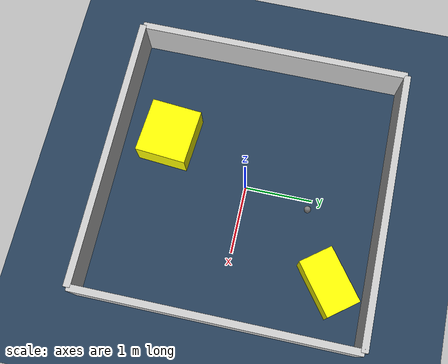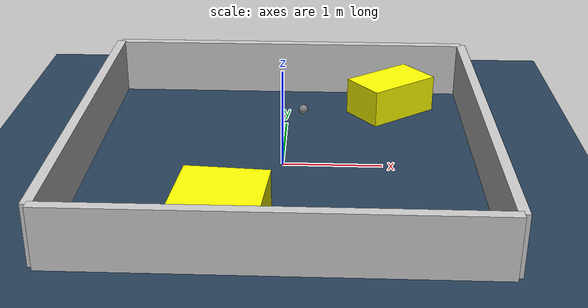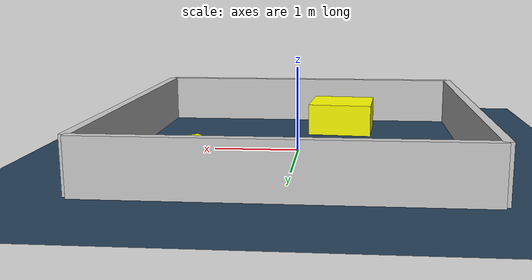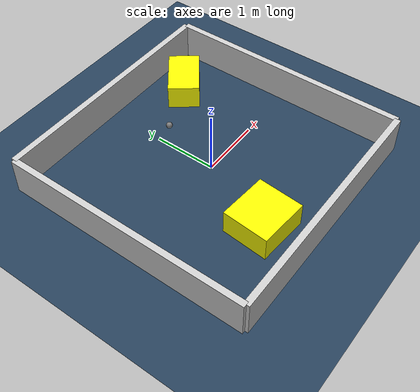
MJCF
<?xml version="1.0" ?>
<mujoco model="generated_environment">
  <option timestep="0.01" integrator="RK4" cone="elliptic"/>
  <default>
    <geom density="1"/>
  </default>
  <asset>
    <texture builtin="gradient" height="3072" rgb1="0.3 0.5 0.7" rgb2="0 0 0" type="skybox" width="512"/>
    <texture builtin="checker" height="300" mark="edge" markrgb="0.8 0.8 0.8" name="groundplane" rgb1="0.2 0.3 0.4" rgb2="0.1 0.2 0.3" type="2d" width="300"/>
    <material name="groundplane" reflectance="0.2" texrepeat="5 5" texture="groundplane" texuniform="true"/>
    <material name="robot" rgba="0.0 1.0 0.0 1"/>
  </asset>
  <worldbody>
    <light dir="0 0 -1" directional="true" pos="0 0 1.5"/>
    <geom condim="4" friction="1.0 0.005 0.001" material="groundplane" name="floor" size="0 0 0.05" type="plane"/>
    <body name="walls">
      <geom name="wall_1" condim="4" pos="-2.0 0.0 0.3" rgba="0.800000011920929 0.800000011920929 0.800000011920929 1.0" size="0.05 2.0 0.3" type="box"/>
      <geom name="wall_2" condim="4" pos="2.0 0.0 0.3" rgba="0.800000011920929 0.800000011920929 0.800000011920929 1.0" size="0.05 2.0 0.3" type="box"/>
      <geom name="wall_3" condim="4" pos="0.0 -2.0 0.3" rgba="0.800000011920929 0.800000011920929 0.800000011920929 1.0" size="2.0 0.05 0.3" type="box"/>
      <geom name="wall_4" condim="4" pos="0.0 2.0 0.3" rgba="0.800000011920929 0.800000011920929 0.800000011920929 1.0" size="2.0 0.05 0.3" type="box"/>
    </body>
    <body name="robot">
      <joint name="joint_x" type="slide" pos="0 0 0" axis="1 0 0"/>
      <joint name="joint_y" type="slide" pos="0 0 0" axis="0 1 0"/>
      <geom name="robot" type="sphere" pos="0.18511969229501113 0.9509959930632874 0.2" size="0.05" mass="5." friction="1.0 0.005 0.0001" condim="4"/>
      <site name="sensor_ball"/>
    </body>
    <body name="obstacle_1_movable">
      <geom name="obstacle_1_movable" condim="4" pos="1.1613888200150984 1.418885886340217 0.2" euler="0 0 307.3719408284287" friction="1.0 0.005 0.001" rgba="1 1 0 1" size="0.25383018666123053 0.42027532182609767 0.2" type="box" mass="0.1"/>
      <joint type="free"/>
    </body>
    <body name="obstacle_2_movable">
      <geom name="obstacle_2_movable" condim="4" pos="-0.504045612621111 -1.258978049996884 0.2" euler="0 0 265.46823934463276" friction="1.0 0.005 0.001" rgba="1 1 0 1" size="0.3731128567601768 0.4067624967477829 0.2" type="box" mass="0.1"/>
      <joint type="free"/>
    </body>
  </worldbody>
  <actuator>
    <motor name="actuator_x" joint="joint_x" gear="1" ctrlrange="-1 1"/>
    <motor name="actuator_y" joint="joint_y" gear="1" ctrlrange="-1 1"/>
  </actuator>
</mujoco>
